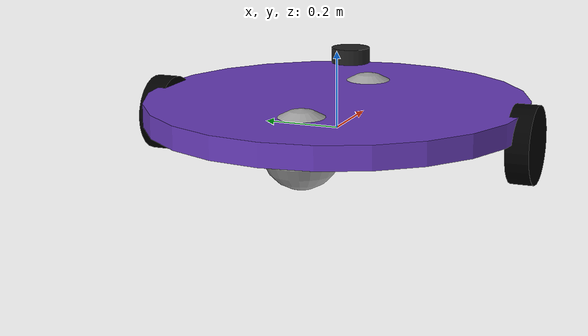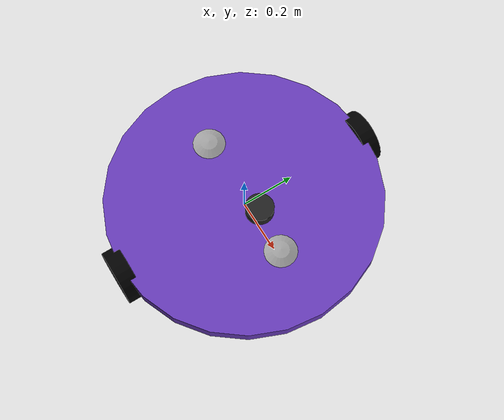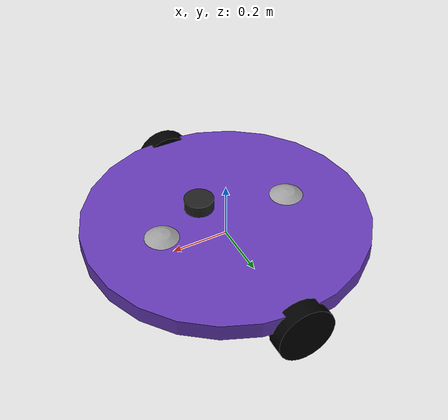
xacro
<?xml version="1.0"?>
<robot name="diff_drive_robot" xmlns:xacro="http://www.ros.org/wiki/xacro">
  <!-- Add namespace parameter -->
  <xacro:arg name="namespace" default=""/>

  <!-- Create a property to store the namespace -->
  <xacro:property name="robot_namespace" value="$(arg namespace)"/>

  <!-- Include files without trying to pass parameters directly -->
  <xacro:include filename="robot_core.xacro" />
  <xacro:include filename="gazebo_control.xacro" />
  <xacro:include filename="lidar.xacro" />

  <xacro:gazebo_control namespace="${robot_namespace}"/>
  <xacro:lidar namespace="${robot_namespace}"/>

</robot>

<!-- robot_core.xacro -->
<robot xmlns:xacro="http://www.ros.org/wiki/xacro" >

      <xacro:include filename="inertial_macros.xacro" />
      <!-- Base link -->

      <link name="base_link">

      </link>

      <!-- Chassis link -->

      <joint name="chassis_joint" type="fixed">
        <parent link="base_link"/>
        <child link="chassis"/>
        <origin xyz="0 0 0"/>
      </joint>

      <link name="chassis">
  <visual>
    <origin xyz="0 0 0.05"/>
    <geometry>
      <cylinder radius="0.5" length="0.06"/>
    </geometry>
    <material name="chassis_material">
      <color rgba="0.40 0.23 0.72 1.0"/>
    </material>
  </visual>

  <collision>
    <origin xyz="0 0 0.05"/>
    <geometry>
      <cylinder radius="0.5" length="0.1"/>
    </geometry>
  </collision>

<inertial>
      <mass value="10.0"/>
      <inertia ixx="1.0" iyy="1.0" izz="1.0"
               ixy="0.0" ixz="0.0" iyz="0.0"/>
    </inertial>
</link>

      <!-- Left wheel link -->
      <joint name="left_wheel_joint" type="continuous">
        <parent link="chassis"/>
        <child link="left_wheel"/>
        <origin xyz="0 0.5 0" rpy="-${pi/2} 0 0"/>
        <axis xyz="0 0 1"/>
      </joint>

      <link name="left_wheel">
         <visual>
            <geometry>
               <cylinder radius="0.10" length="0.06"/>
            </geometry>
            <material name="wheel_material">
               <color rgba="0.0 0.0 0.0 1.0"/>
            </material>
         </visual>
         <collision>
            <geometry>
               <cylinder radius="0.10" length="0.06"/>
            </geometry>
         </collision>
         <xacro:inertial_cylinder mass="0.1" length="0.06" radius="0.10">
            <origin xyz="0 0 0" rpy="0 0 0"/>
         </xacro:inertial_cylinder>
      </link>

      <!-- Right wheel link -->
      <joint name="right_wheel_joint" type="continuous">
        <parent link="chassis"/>
        <child link="right_wheel"/>
        <origin xyz="0 -0.5 0" rpy="${pi/2} 0 0"/>
        <axis xyz="0 0 -1"/>
      </joint>

      <link name="right_wheel">
         <visual>
            <geometry>
               <cylinder radius="0.10" length="0.06"/>
            </geometry>
            <material name="wheel_material">
                <color rgba="0.0 0.0 0.0 1.0"/>
            </material>
         </visual>
         <collision>
            <geometry>
               <cylinder radius="0.10" length="0.06"/>
            </geometry>
         </collision>
            <xacro:inertial_cylinder mass="0.1" length="0.06" radius="0.10">
            <origin xyz="0 0 0" rpy="0 0 0"/>
         </xacro:inertial_cylinder>
      </link>

      <!-- Castor wheel link -->
      <joint name="castor_wheel_joint" type="fixed">
        <parent link="chassis"/>
        <child link="castor_wheel"/>
        <origin xyz="0.24 0 0"/>
      </joint>

      <joint name="castor_wheel_joint_back" type="fixed">
        <parent link="chassis"/>
        <child link="castor_wheel_back"/>
        <origin xyz="-0.24 0 0"/>
      </joint>

      <link name="castor_wheel">
         <visual>
            <geometry>
               <sphere radius="0.1"/>
            </geometry>
            <material name="castor_material">
                <color rgba="0.62 0.62 0.62 1.0"/>
            </material>
         </visual>
         <collision>
            <geometry>
               <sphere radius="0.1"/>
            </geometry>
         </collision>
         <xacro:inertial_sphere mass="0.1" radius="0.1">
            <origin xyz="0 0 0" rpy="0 0 0"/>
         </xacro:inertial_sphere>
      </link>

       <link name="castor_wheel_back">
         <visual>
            <geometry>
               <sphere radius="0.1"/>
            </geometry>
            <material name="castor_material">
                <color rgba="0.62 0.62 0.62 1.0"/>
            </material>
         </visual>
         <collision>
            <geometry>
               <sphere radius="0.1"/>
            </geometry>
         </collision>
         <xacro:inertial_sphere mass="0.1" radius="0.1">
            <origin xyz="0 0 0" rpy="0 0 0"/>
         </xacro:inertial_sphere>
      </link>

      <!-- Gazebo Parameters -->
      <gazebo reference="chassis_link">
         <mu1>1.0</mu1>
         <mu2>1.0</mu2>
      </gazebo>

      <gazebo reference="right_wheel">
         <mu1>1.0</mu1>
         <mu2>1.0</mu2>
      </gazebo>

      <gazebo reference="left_wheel">
         <mu1>1.0</mu1>
         <mu2>1.0</mu2>
      </gazebo>

      <gazebo reference="castor_wheel">
         <mu1>0.000001</mu1>
         <mu2>0.000001</mu2>
      </gazebo>

      <gazebo reference="castor_wheel_back">
         <mu1>0.000001</mu1>
         <mu2>0.000001</mu2>
      </gazebo>

</robot>

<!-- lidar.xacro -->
<robot xmlns:xacro="http://www.ros.org/wiki/xacro">
  <!-- Access the namespace from the parent file -->
  <xacro:macro name="lidar" params="namespace">
    <xacro:property name="ns" value="${namespace}" />

    <joint name="laser_joint" type="fixed">
      <parent link="chassis"/>
      <child link="laser_frame"/>
      <origin xyz="0.1 0 0.175" rpy="0 0 0"/>
    </joint>

    <link name="laser_frame">
      <visual>
        <origin xyz="0 0 0"/>
        <geometry>
          <cylinder length="0.04" radius="0.05"/>
        </geometry>
        <material name="laser_material">
          <color rgba="0.13 0.13 0.13 1.0"/>
        </material>
      </visual>
      <collision>
        <origin xyz="0 0 0"/>
        <geometry>
          <cylinder length="0.04" radius="0.05"/>
        </geometry>
      </collision>
      <xacro:inertial_cylinder mass="0.1" length="0.04" radius="0.05">
        <origin xyz="0 0 0" rpy="0 0 0"/>
      </xacro:inertial_cylinder>
    </link>

    <!-- 2D Lidar New Gazebo Sensor Plugin -->
    <gazebo reference="laser_frame">
      <sensor name="laser" type="gpu_lidar">
        <pose> 0 0 0 0 0 0 </pose>
        <always_on>true</always_on>
        <visualize>true</visualize>
        <update_rate>10</update_rate>

        <!-- Use namespace for topic if provided -->
        <xacro:if value="${ns != ''}">
          <topic>/${ns}/scan</topic>
        </xacro:if>
        <xacro:unless value="${ns != ''}">
          <topic>/scan</topic>
        </xacro:unless>

        <gz_frame_id>laser_frame</gz_frame_id>
        <lidar>
          <scan>
            <horizontal>
              <samples>360</samples>
              <min_angle>-3.14</min_angle>
              <max_angle>3.14</max_angle>
            </horizontal>
          </scan>
          <range>
            <min>0.3</min>
            <max>12</max>
          </range>
        </lidar>
      </sensor>
    </gazebo>
  </xacro:macro>

</robot>
